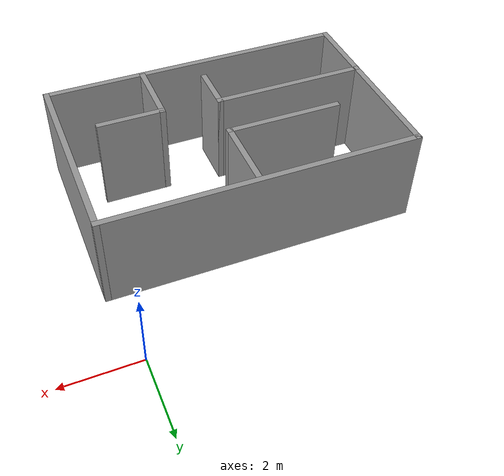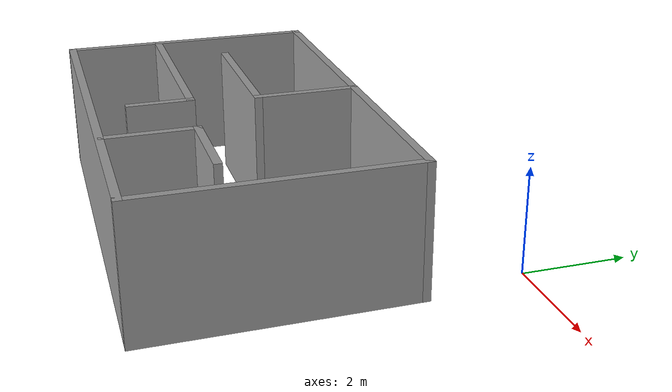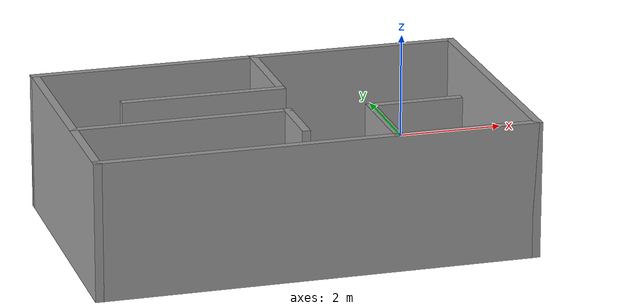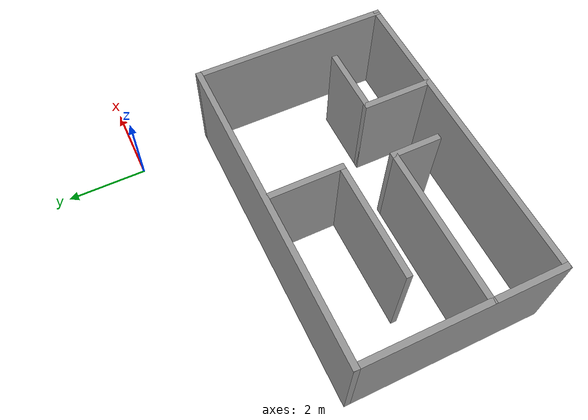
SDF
<?xml version='1.0'?>
<sdf version='1.7'>
  <model name='room'>
    <pose>-3.595 -3.4375 0 0 -0 0</pose>
    <link name='Wall_0'>
      <collision name='Wall_0_Collision'>
        <geometry>
          <box>
            <size>8 0.15 2.5</size>
          </box>
        </geometry>
        <pose>0 0 1.25 0 -0 0</pose>
      </collision>
      <visual name='Wall_0_Visual'>
        <pose>0 0 1.25 0 -0 0</pose>
        <geometry>
          <box>
            <size>8 0.15 2.5</size>
          </box>
        </geometry>
        <material>
          <script>
            <uri>file://media/materials/scripts/gazebo.material</uri>
            <name>Gazebo/Grey</name>
          </script>
          <ambient>1 1 1 1</ambient>
        </material>
        <meta>
          <layer>0</layer>
        </meta>
      </visual>
      <pose>-0 1.4875 0 0 -0 3.14159</pose>
    </link>
    <link name='Wall_1'>
      <collision name='Wall_1_Collision'>
        <geometry>
          <box>
            <size>0.15 0.15 2.5</size>
          </box>
        </geometry>
        <pose>0 0 1.25 0 -0 0</pose>
      </collision>
      <visual name='Wall_1_Visual'>
        <pose>0 0 1.25 0 -0 0</pose>
        <geometry>
          <box>
            <size>0.15 0.15 2.5</size>
          </box>
        </geometry>
        <material>
          <script>
            <uri>file://media/materials/scripts/gazebo.material</uri>
            <name>Gazebo/Grey</name>
          </script>
          <ambient>1 1 1 1</ambient>
        </material>
        <meta>
          <layer>0</layer>
        </meta>
      </visual>
      <pose>-3.925 1.4875 0 0 -0 0</pose>
    </link>
    <link name='Wall_10'>
      <collision name='Wall_10_Collision'>
        <geometry>
          <box>
            <size>1.25 0.15 2.5</size>
          </box>
        </geometry>
        <pose>0 0 1.25 0 -0 0</pose>
      </collision>
      <visual name='Wall_10_Visual'>
        <pose>0 0 1.25 0 -0 0</pose>
        <geometry>
          <box>
            <size>1.25 0.15 2.5</size>
          </box>
        </geometry>
        <material>
          <script>
            <uri>file://media/materials/scripts/gazebo.material</uri>
            <name>Gazebo/Grey</name>
          </script>
          <ambient>1 1 1 1</ambient>
        </material>
        <meta>
          <layer>0</layer>
        </meta>
      </visual>
      <pose>-0.06919 -2.12542 0 0 -0 -1.5708</pose>
    </link>
    <link name='Wall_12'>
      <collision name='Wall_12_Collision'>
        <geometry>
          <box>
            <size>1.75 0.15 2.5</size>
          </box>
        </geometry>
        <pose>0 0 1.25 0 -0 0</pose>
      </collision>
      <visual name='Wall_12_Visual'>
        <pose>0 0 1.25 0 -0 0</pose>
        <geometry>
          <box>
            <size>1.75 0.15 2.5</size>
          </box>
        </geometry>
        <material>
          <script>
            <uri>file://media/materials/scripts/gazebo.material</uri>
            <name>Gazebo/Grey</name>
          </script>
          <ambient>1 1 1 1</ambient>
        </material>
        <meta>
          <layer>0</layer>
        </meta>
      </visual>
      <pose>1.40387 -2.50922 0 0 -0 1.5708</pose>
    </link>
    <link name='Wall_13'>
      <collision name='Wall_13_Collision'>
        <geometry>
          <box>
            <size>1.75 0.15 2.5</size>
          </box>
        </geometry>
        <pose>0 0 1.25 0 -0 0</pose>
      </collision>
      <visual name='Wall_13_Visual'>
        <pose>0 0 1.25 0 -0 0</pose>
        <geometry>
          <box>
            <size>1.75 0.15 2.5</size>
          </box>
        </geometry>
        <material>
          <script>
            <uri>file://media/materials/scripts/gazebo.material</uri>
            <name>Gazebo/Grey</name>
          </script>
          <ambient>1 1 1 1</ambient>
        </material>
        <meta>
          <layer>0</layer>
        </meta>
      </visual>
      <pose>2.20387 -1.70922 0 0 -0 0</pose>
    </link>
    <link name='Wall_2'>
      <collision name='Wall_2_Collision'>
        <geometry>
          <box>
            <size>5 0.15 2.5</size>
          </box>
        </geometry>
        <pose>0 0 1.25 0 -0 0</pose>
      </collision>
      <visual name='Wall_2_Visual'>
        <pose>0 0 1.25 0 -0 0</pose>
        <geometry>
          <box>
            <size>5 0.15 2.5</size>
          </box>
        </geometry>
        <material>
          <script>
            <uri>file://media/materials/scripts/gazebo.material</uri>
            <name>Gazebo/Grey</name>
          </script>
          <ambient>1 1 1 1</ambient>
        </material>
        <meta>
          <layer>0</layer>
        </meta>
      </visual>
      <pose>-3.925 -0.9375 0 0 -0 -1.5708</pose>
    </link>
    <link name='Wall_3'>
      <collision name='Wall_3_Collision'>
        <geometry>
          <box>
            <size>8 0.15 2.5</size>
          </box>
        </geometry>
        <pose>0 0 1.25 0 -0 0</pose>
      </collision>
      <visual name='Wall_3_Visual'>
        <pose>0 0 1.25 0 -0 0</pose>
        <geometry>
          <box>
            <size>8 0.15 2.5</size>
          </box>
        </geometry>
        <material>
          <script>
            <uri>file://media/materials/scripts/gazebo.material</uri>
            <name>Gazebo/Grey</name>
          </script>
          <ambient>1 1 1 1</ambient>
        </material>
        <meta>
          <layer>0</layer>
        </meta>
      </visual>
      <pose>-0 -3.3625 0 0 -0 0</pose>
    </link>
    <link name='Wall_4'>
      <collision name='Wall_4_Collision'>
        <geometry>
          <box>
            <size>5 0.15 2.5</size>
          </box>
        </geometry>
        <pose>0 0 1.25 0 -0 0</pose>
      </collision>
      <visual name='Wall_4_Visual'>
        <pose>0 0 1.25 0 -0 0</pose>
        <geometry>
          <box>
            <size>5 0.15 2.5</size>
          </box>
        </geometry>
        <material>
          <script>
            <uri>file://media/materials/scripts/gazebo.material</uri>
            <name>Gazebo/Grey</name>
          </script>
          <ambient>1 1 1 1</ambient>
        </material>
        <meta>
          <layer>0</layer>
        </meta>
      </visual>
      <pose>3.925 -0.9375 0 0 -0 1.5708</pose>
    </link>
    <link name='Wall_6'>
      <collision name='Wall_6_Collision'>
        <geometry>
          <box>
            <size>2 0.15 2.5</size>
          </box>
        </geometry>
        <pose>0 0 1.25 0 -0 0</pose>
      </collision>
      <visual name='Wall_6_Visual'>
        <pose>0 0 1.25 0 -0 0</pose>
        <geometry>
          <box>
            <size>2 0.15 2.5</size>
          </box>
        </geometry>
        <material>
          <script>
            <uri>file://media/materials/scripts/gazebo.material</uri>
            <name>Gazebo/Grey</name>
          </script>
          <ambient>1 1 1 1</ambient>
        </material>
        <meta>
          <layer>0</layer>
        </meta>
      </visual>
      <pose>0.141546 0.556537 0 0 -0 -1.5708</pose>
    </link>
    <link name='Wall_7'>
      <collision name='Wall_7_Collision'>
        <geometry>
          <box>
            <size>3 0.15 2.5</size>
          </box>
        </geometry>
        <pose>0 0 1.25 0 -0 0</pose>
      </collision>
      <visual name='Wall_7_Visual'>
        <pose>0 0 1.25 0 -0 0</pose>
        <geometry>
          <box>
            <size>3 0.15 2.5</size>
          </box>
        </geometry>
        <material>
          <script>
            <uri>file://media/materials/scripts/gazebo.material</uri>
            <name>Gazebo/Grey</name>
          </script>
          <ambient>1 1 1 1</ambient>
        </material>
        <meta>
          <layer>0</layer>
        </meta>
      </visual>
      <pose>-1.28345 -0.368463 0 0 -0 3.14159</pose>
    </link>
    <link name='Wall_9'>
      <collision name='Wall_9_Collision'>
        <geometry>
          <box>
            <size>4 0.15 2.5</size>
          </box>
        </geometry>
        <pose>0 0 1.25 0 -0 0</pose>
      </collision>
      <visual name='Wall_9_Visual'>
        <pose>0 0 1.25 0 -0 0</pose>
        <geometry>
          <box>
            <size>4 0.15 2.5</size>
          </box>
        </geometry>
        <material>
          <script>
            <uri>file://media/materials/scripts/gazebo.material</uri>
            <name>Gazebo/Grey</name>
          </script>
          <ambient>1 1 1 1</ambient>
        </material>
        <meta>
          <layer>0</layer>
        </meta>
      </visual>
      <pose>-1.99419 -1.57542 0 0 -0 0</pose>
    </link>
    <static>1</static>
  </model>
</sdf>
